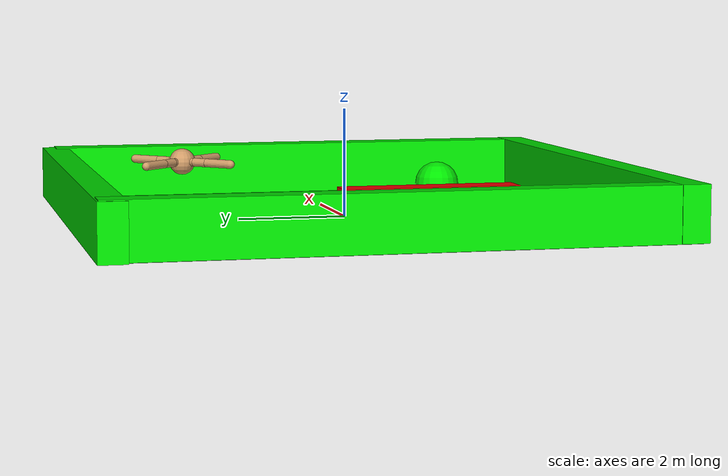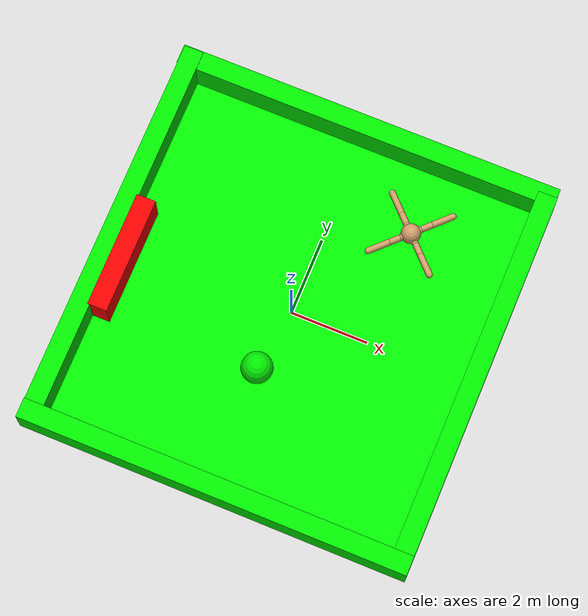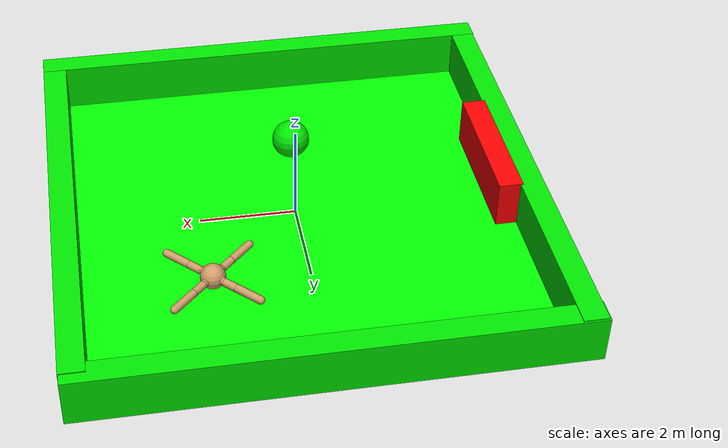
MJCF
<mujoco>
  <default>
    <joint armature="1" damping="1" limited="true"/>
    <geom condim="3" density="5.0" friction="1 0.5 0.5" margin="0.01" rgba="0.8 0.6 0.4 1"/>
  </default>
  <worldbody>
    <light diffuse=".5 .5 .5" pos="0 0 3" dir="0 0 -1" />
    <body pos="0 0 0" name="">
      <geom type="plane" size="5 5 1.110223E-16" euler="0 0 0" rgba="0 255 0 1" name="" />
    </body>
    <body pos="0.009118199 -4.860559 0.4894152" name="">
      <geom type="box" size="5 0.25 0.5" euler="0 0 0" rgba="0 .9 0 1" name="" />
    </body>
    <body pos="-0.001238585 4.898753 0.467675" name="">
      <geom type="box" size="5 0.25 0.5" euler="0 0 0" rgba="0 .9 0 1" name="" />
    </body>
    <body pos="4.761338 -0.08965623 0.4880085" name="">
      <geom type="box" size="0.25 5 0.5" euler="0 0 0" rgba="0 .9 0 1" name="" />
    </body>
    <body pos="-4.727 0.1185943 0.4880471" name="">
      <geom type="box" size="0.25 5 0.5" euler="0 0 0" rgba="0 .9 0 1" name="" />
    </body>
    <body pos="-4.280405 -0.4097991 0.5016704" name="goal">
      <geom type="box" size="0.25 1.5 0.5" euler="0 0 0" rgba="255 0 0 1" name="goal_geom0" />
    </body>
    <body pos="2.020049 2.728031 0.9" name="red_1">
      <camera name="red_1_track" mode="trackcom" pos="0 -3 0.3" xyaxes="1 0 0 0 0 1"/>
      <geom name="red_1_torso_geom" pos="0 0 0" size="0.25" type="sphere"/>
      <joint armature="0" damping="0" limited="false" margin="0.01" name="red_1_root" pos="0 0 0" type="free"/>
      <body name="red_1_front_left_leg" pos="0 0 0">
        <geom fromto="0.0 0.0 0.0 0.2 0.2 0.0" name="red_1_aux_1_geom" size="0.08" type="capsule"/>
        <body name="red_1_aux_1" pos="0.2 0.2 0">
          <joint axis="0 0 1" name="red_1_hip_1" pos="0.0 0.0 0.0" range="-30 30" type="hinge"/>
          <geom fromto="0.0 0.0 0.0 0.2 0.2 0.0" name="red_1_left_leg_geom" size="0.08" type="capsule"/>
          <body pos="0.2 0.2 0">
            <joint axis="-1 1 0" name="red_1_ankle_1" pos="0.0 0.0 0.0" range="30 70" type="hinge"/>
            <geom fromto="0.0 0.0 0.0 0.4 0.4 0.0" name="red_1_left_ankle_geom" size="0.08" type="capsule"/>
          </body>
        </body>
      </body>
      <body name="red_1_front_right_leg" pos="0 0 0">
        <geom fromto="0.0 0.0 0.0 -0.2 0.2 0.0" name="red_1_aux_2_geom" size="0.08" type="capsule"/>
        <body name="red_1_aux_2" pos="-0.2 0.2 0">
          <joint axis="0 0 1" name="red_1_hip_2" pos="0.0 0.0 0.0" range="-30 30" type="hinge"/>
          <geom fromto="0.0 0.0 0.0 -0.2 0.2 0.0" name="red_1_right_leg_geom" size="0.08" type="capsule"/>
          <body pos="-0.2 0.2 0">
            <joint axis="1 1 0" name="red_1_ankle_2" pos="0.0 0.0 0.0" range="-70 -30" type="hinge"/>
            <geom fromto="0.0 0.0 0.0 -0.4 0.4 0.0" name="red_1_right_ankle_geom" size="0.08" type="capsule"/>
          </body>
        </body>
      </body>
      <body name="red_1_back_leg" pos="0 0 0">
        <geom fromto="0.0 0.0 0.0 -0.2 -0.2 0.0" name="red_1_aux_3_geom" size="0.08" type="capsule"/>
        <body name="red_1_aux_3" pos="-0.2 -0.2 0">
          <joint axis="0 0 1" name="red_1_hip_3" pos="0.0 0.0 0.0" range="-30 30" type="hinge"/>
          <geom fromto="0.0 0.0 0.0 -0.2 -0.2 0.0" name="red_1_back_leg_geom" size="0.08" type="capsule"/>
          <body pos="-0.2 -0.2 0">
            <joint axis="-1 1 0" name="red_1_ankle_3" pos="0.0 0.0 0.0" range="-70 -30" type="hinge"/>
            <geom fromto="0.0 0.0 0.0 -0.4 -0.4 0.0" name="red_1_third_ankle_geom" size="0.08" type="capsule"/>
          </body>
        </body>
      </body>
      <body name="red_1_right_back_leg" pos="0 0 0">
        <geom fromto="0.0 0.0 0.0 0.2 -0.2 0.0" name="red_1_aux_4_geom" size="0.08" type="capsule"/>
        <body name="red_1_aux_4" pos="0.2 -0.2 0">
          <joint axis="0 0 1" name="red_1_hip_4" pos="0.0 0.0 0.0" range="-30 30" type="hinge"/>
          <geom fromto="0.0 0.0 0.0 0.2 -0.2 0.0" name="red_1_rightback_leg_geom" size="0.08" type="capsule"/>
          <body pos="0.2 -0.2 0">
            <joint axis="1 1 0" name="red_1_ankle_4" pos="0.0 0.0 0.0" range="30 70" type="hinge"/>
            <geom fromto="0.0 0.0 0.0 0.4 -0.4 0.0" name="red_1_fourth_ankle_geom" size="0.08" type="capsule"/>
          </body>
        </body>
      </body>
    </body>
    <body pos="-0.183617 -1.732173 0.601779" name="ball">
      <joint type="free"/>
      <inertial mass="0.15" diaginertia="0.1 0.1 0.1" pos="0 0 0"/>
      <geom type="sphere" size="0.4 0.4 0.4" euler="0 0 0" rgba="0 .9 0 1" name="ball_geom0" />
    </body>
  </worldbody>
  <sensor />
  <actuator>
    <motor ctrllimited="true" ctrlrange="-1.0 1.0" joint="red_1_hip_4" gear="150" name="red_1_hip_4_motor"/>
    <motor ctrllimited="true" ctrlrange="-1.0 1.0" joint="red_1_ankle_4" gear="150" name="red_1_ankle_4_motor"/>
    <motor ctrllimited="true" ctrlrange="-1.0 1.0" joint="red_1_hip_1" gear="150" name="red_1_hip_1_motor"/>
    <motor ctrllimited="true" ctrlrange="-1.0 1.0" joint="red_1_ankle_1" gear="150" name="red_1_ankle_1_motor"/>
    <motor ctrllimited="true" ctrlrange="-1.0 1.0" joint="red_1_hip_2" gear="150" name="red_1_hip_2_motor"/>
    <motor ctrllimited="true" ctrlrange="-1.0 1.0" joint="red_1_ankle_2" gear="150" name="red_1_ankle_2_motor"/>
    <motor ctrllimited="true" ctrlrange="-1.0 1.0" joint="red_1_hip_3" gear="150" name="red_1_hip_3_motor"/>
    <motor ctrllimited="true" ctrlrange="-1.0 1.0" joint="red_1_ankle_3" gear="150" name="red_1_ankle_3_motor"/>
  </actuator>
</mujoco>
